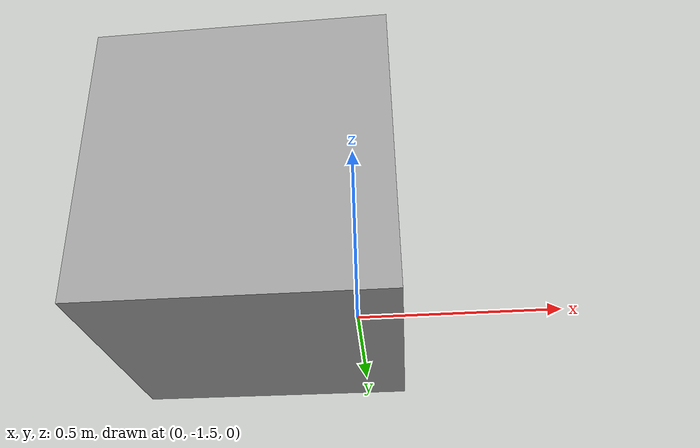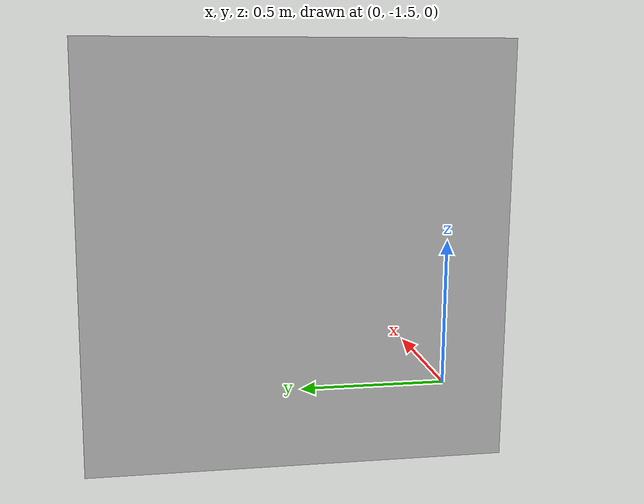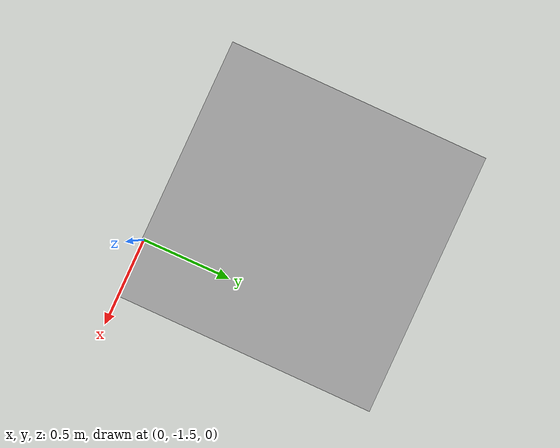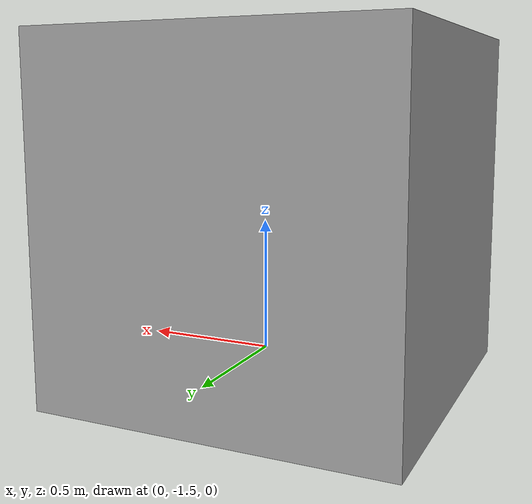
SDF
<?xml version='1.0'?>
<sdf version='1.6'>
  <model name='rolling_robot_model'>
    <link name='link_0'>
      <pose frame=''>-0.379486 -0.842679 0.643927 0 -0 0</pose>
      <inertial>
        <mass>10</mass>
        <inertia>
          <ixx>1.66667</ixx>
          <ixy>0</ixy>
          <ixz>0</ixz>
          <iyy>1.66667</iyy>
          <iyz>0</iyz>
          <izz>1.66667</izz>
        </inertia>
        <pose frame=''>0 0 0 0 -0 0</pose>
      </inertial>
      <self_collide>0</self_collide>
      <kinematic>0</kinematic>
      <visual name='visual'>
        <pose frame=''>0 0 0 0 -0 0</pose>
        <geometry>
          <box>
            <size>1 1 1</size>
          </box>
        </geometry>
        <material>
          <lighting>1</lighting>
          <script>
            <uri>file://media/materials/scripts/gazebo.material</uri>
            <name>Gazebo/Grey</name>
          </script>
          <ambient>0.3 0.3 0.3 1</ambient>
          <diffuse>0.7 0.7 0.7 1</diffuse>
          <specular>0.01 0.01 0.01 1</specular>
          <emissive>0 0 0 1</emissive>
          <shader type='vertex'>
            <normal_map>__default__</normal_map>
          </shader>
        </material>
        <cast_shadows>1</cast_shadows>
        <transparency>0</transparency>
      </visual>
      <collision name='collision'>
        <laser_retro>0</laser_retro>
        <max_contacts>10</max_contacts>
        <pose frame=''>0 0 0 0 -0 0</pose>
        <geometry>
          <box>
            <size>1 1 1</size>
          </box>
        </geometry>
        <surface>
          <friction>
            <ode>
              <mu>100</mu>
              <mu2>100</mu2>
              <fdir1>0 0 0</fdir1>
              <slip1>0</slip1>
              <slip2>0</slip2>
            </ode>
            <torsional>
              <coefficient>1</coefficient>
              <patch_radius>0</patch_radius>
              <surface_radius>0</surface_radius>
              <use_patch_radius>1</use_patch_radius>
              <ode>
                <slip>0</slip>
              </ode>
            </torsional>
          </friction>
          <bounce>
            <restitution_coefficient>0</restitution_coefficient>
            <threshold>1e+06</threshold>
          </bounce>
          <contact>
            <collide_without_contact>0</collide_without_contact>
            <collide_without_contact_bitmask>1</collide_without_contact_bitmask>
            <collide_bitmask>1</collide_bitmask>
            <ode>
              <soft_cfm>0</soft_cfm>
              <soft_erp>0.2</soft_erp>
              <kp>1e+13</kp>
              <kd>1</kd>
              <max_vel>0.01</max_vel>
              <min_depth>0</min_depth>
            </ode>
            <bullet>
              <split_impulse>1</split_impulse>
              <split_impulse_penetration_threshold>-0.01</split_impulse_penetration_threshold>
              <soft_cfm>0</soft_cfm>
              <soft_erp>0.2</soft_erp>
              <kp>1e+13</kp>
              <kd>1</kd>
            </bullet>
          </contact>
        </surface>
      </collision>
    </link>
    <link name='link_1'>
      <pose frame=''>-0.06482 -1.15732 0.356073 0 -0 0</pose>
      <inertial>
        <mass>1</mass>
        <inertia>
          <ixx>0.145833</ixx>
          <ixy>0</ixy>
          <ixz>0</ixz>
          <iyy>0.145833</iyy>
          <iyz>0</iyz>
          <izz>0.125</izz>
        </inertia>
        <pose frame=''>0 0 0 -0.785298 0 0.785298</pose>
      </inertial>
      <self_collide>0</self_collide>
      <kinematic>0</kinematic>
      <visual name='visual'>
        <pose frame=''>0 0 0 -0.785298 0 0.785298</pose>
        <geometry>
          <cylinder>
            <radius>0.05</radius>
            <length>0.5</length>
          </cylinder>
        </geometry>
        <material>
          <lighting>1</lighting>
          <script>
            <uri>file://media/materials/scripts/gazebo.material</uri>
            <name>Gazebo/Grey</name>
          </script>
          <ambient>0.3 0.3 0.3 1</ambient>
          <diffuse>0.7 0.7 0.7 1</diffuse>
          <specular>0.01 0.01 0.01 1</specular>
          <emissive>0 0 0 1</emissive>
          <shader type='vertex'>
            <normal_map>__default__</normal_map>
          </shader>
        </material>
        <cast_shadows>1</cast_shadows>
        <transparency>0</transparency>
      </visual>
      <collision name='collision'>
        <laser_retro>0</laser_retro>
        <max_contacts>10</max_contacts>
        <pose frame=''>0 0 0 -0.785298 0 0.785298</pose>
        <geometry>
          <cylinder>
            <radius>0.05</radius>
            <length>0.5</length>
          </cylinder>
        </geometry>
        <surface>
          <friction>
            <ode>
              <mu>10000</mu>
              <mu2>10000</mu2>
              <fdir1>0 0 0</fdir1>
              <slip1>0</slip1>
              <slip2>0</slip2>
            </ode>
            <torsional>
              <coefficient>1</coefficient>
              <patch_radius>0</patch_radius>
              <surface_radius>0</surface_radius>
              <use_patch_radius>1</use_patch_radius>
              <ode>
                <slip>0</slip>
              </ode>
            </torsional>
          </friction>
          <bounce>
            <restitution_coefficient>0</restitution_coefficient>
            <threshold>1e+06</threshold>
          </bounce>
          <contact>
            <collide_without_contact>0</collide_without_contact>
            <collide_without_contact_bitmask>1</collide_without_contact_bitmask>
            <collide_bitmask>1</collide_bitmask>
            <ode>
              <soft_cfm>0</soft_cfm>
              <soft_erp>0.2</soft_erp>
              <kp>1e+13</kp>
              <kd>1</kd>
              <max_vel>0.01</max_vel>
              <min_depth>0</min_depth>
            </ode>
            <bullet>
              <split_impulse>1</split_impulse>
              <split_impulse_penetration_threshold>-0.01</split_impulse_penetration_threshold>
              <soft_cfm>0</soft_cfm>
              <soft_erp>0.2</soft_erp>
              <kp>1e+13</kp>
              <kd>1</kd>
            </bullet>
          </contact>
        </surface>
      </collision>
    </link>
    <link name='link_1_clone'>
      <pose frame=''>-0.694129 -1.15735 0.356073 0 -0 -1.5708</pose>
      <inertial>
        <mass>1</mass>
        <inertia>
          <ixx>0.145833</ixx>
          <ixy>0</ixy>
          <ixz>0</ixz>
          <iyy>0.145833</iyy>
          <iyz>0</iyz>
          <izz>0.125</izz>
        </inertia>
        <pose frame=''>0 0 0 -0.785298 0 0.785298</pose>
      </inertial>
      <self_collide>0</self_collide>
      <kinematic>0</kinematic>
      <visual name='visual'>
        <pose frame=''>0 0 0 -0.785298 0 0.785298</pose>
        <geometry>
          <cylinder>
            <radius>0.05</radius>
            <length>0.5</length>
          </cylinder>
        </geometry>
        <material>
          <lighting>1</lighting>
          <script>
            <uri>file://media/materials/scripts/gazebo.material</uri>
            <name>Gazebo/Grey</name>
          </script>
          <ambient>0.3 0.3 0.3 1</ambient>
          <diffuse>0.7 0.7 0.7 1</diffuse>
          <specular>0.01 0.01 0.01 1</specular>
          <emissive>0 0 0 1</emissive>
          <shader type='vertex'>
            <normal_map>__default__</normal_map>
          </shader>
        </material>
        <cast_shadows>1</cast_shadows>
        <transparency>0</transparency>
      </visual>
      <collision name='collision'>
        <laser_retro>0</laser_retro>
        <max_contacts>10</max_contacts>
        <pose frame=''>0 0 0 -0.785298 0 0.785298</pose>
        <geometry>
          <cylinder>
            <radius>0.05</radius>
            <length>0.5</length>
          </cylinder>
        </geometry>
        <surface>
          <friction>
            <ode>
              <mu>1000</mu>
              <mu2>1000</mu2>
              <fdir1>0 0 0</fdir1>
              <slip1>0</slip1>
              <slip2>0</slip2>
            </ode>
            <torsional>
              <coefficient>1</coefficient>
              <patch_radius>0</patch_radius>
              <surface_radius>0</surface_radius>
              <use_patch_radius>1</use_patch_radius>
              <ode>
                <slip>0</slip>
              </ode>
            </torsional>
          </friction>
          <bounce>
            <restitution_coefficient>0</restitution_coefficient>
            <threshold>1e+06</threshold>
          </bounce>
          <contact>
            <collide_without_contact>0</collide_without_contact>
            <collide_without_contact_bitmask>1</collide_without_contact_bitmask>
            <collide_bitmask>1</collide_bitmask>
            <ode>
              <soft_cfm>0</soft_cfm>
              <soft_erp>0.2</soft_erp>
              <kp>1e+13</kp>
              <kd>1</kd>
              <max_vel>0.01</max_vel>
              <min_depth>0</min_depth>
            </ode>
            <bullet>
              <split_impulse>1</split_impulse>
              <split_impulse_penetration_threshold>-0.01</split_impulse_penetration_threshold>
              <soft_cfm>0</soft_cfm>
              <soft_erp>0.2</soft_erp>
              <kp>1e+13</kp>
              <kd>1</kd>
            </bullet>
          </contact>
        </surface>
      </collision>
    </link>
    <link name='link_1_clone_0'>
      <pose frame=''>-0.694153 -0.528026 0.356073 0 -0 3.14159</pose>
      <inertial>
        <mass>1</mass>
        <inertia>
          <ixx>0.145833</ixx>
          <ixy>0</ixy>
          <ixz>0</ixz>
          <iyy>0.145833</iyy>
          <iyz>0</iyz>
          <izz>0.125</izz>
        </inertia>
        <pose frame=''>0 0 0 -0.785298 0 0.785298</pose>
      </inertial>
      <self_collide>0</self_collide>
      <kinematic>0</kinematic>
      <visual name='visual'>
        <pose frame=''>0 0 0 -0.785298 0 0.785298</pose>
        <geometry>
          <cylinder>
            <radius>0.05</radius>
            <length>0.5</length>
          </cylinder>
        </geometry>
        <material>
          <lighting>1</lighting>
          <script>
            <uri>file://media/materials/scripts/gazebo.material</uri>
            <name>Gazebo/Grey</name>
          </script>
          <ambient>0.3 0.3 0.3 1</ambient>
          <diffuse>0.7 0.7 0.7 1</diffuse>
          <specular>0.01 0.01 0.01 1</specular>
          <emissive>0 0 0 1</emissive>
          <shader type='vertex'>
            <normal_map>__default__</normal_map>
          </shader>
        </material>
        <cast_shadows>1</cast_shadows>
        <transparency>0</transparency>
      </visual>
      <collision name='collision'>
        <laser_retro>0</laser_retro>
        <max_contacts>10</max_contacts>
        <pose frame=''>0 0 0 -0.785298 0 0.785298</pose>
        <geometry>
          <cylinder>
            <radius>0.05</radius>
            <length>0.5</length>
          </cylinder>
        </geometry>
        <surface>
          <friction>
            <ode>
              <mu>1</mu>
              <mu2>1</mu2>
              <fdir1>0 0 0</fdir1>
              <slip1>0</slip1>
              <slip2>0</slip2>
            </ode>
            <torsional>
              <coefficient>1</coefficient>
              <patch_radius>0</patch_radius>
              <surface_radius>0</surface_radius>
              <use_patch_radius>1</use_patch_radius>
              <ode>
                <slip>0</slip>
              </ode>
            </torsional>
          </friction>
          <bounce>
            <restitution_coefficient>0</restitution_coefficient>
            <threshold>1e+06</threshold>
          </bounce>
          <contact>
            <collide_without_contact>0</collide_without_contact>
            <collide_without_contact_bitmask>1</collide_without_contact_bitmask>
            <collide_bitmask>1</collide_bitmask>
            <ode>
              <soft_cfm>0</soft_cfm>
              <soft_erp>0.2</soft_erp>
              <kp>1e+13</kp>
              <kd>1</kd>
              <max_vel>0.01</max_vel>
              <min_depth>0</min_depth>
            </ode>
            <bullet>
              <split_impulse>1</split_impulse>
              <split_impulse_penetration_threshold>-0.01</split_impulse_penetration_threshold>
              <soft_cfm>0</soft_cfm>
              <soft_erp>0.2</soft_erp>
              <kp>1e+13</kp>
              <kd>1</kd>
            </bullet>
          </contact>
        </surface>
      </collision>
    </link>
    <link name='link_1_clone_0_clone'>
      <pose frame=''>-0.06482 -1.15733 0.931781 0 -0 0</pose>
      <inertial>
        <mass>1</mass>
        <inertia>
          <ixx>0.145833</ixx>
          <ixy>0</ixy>
          <ixz>0</ixz>
          <iyy>0.145833</iyy>
          <iyz>0</iyz>
          <izz>0.125</izz>
        </inertia>
        <pose frame=''>0 0 0 0 -0 0</pose>
      </inertial>
      <self_collide>0</self_collide>
      <kinematic>0</kinematic>
      <visual name='visual'>
        <pose frame=''>0 0 0 0.785298 -0 0.785298</pose>
        <geometry>
          <cylinder>
            <radius>0.05</radius>
            <length>0.5</length>
          </cylinder>
        </geometry>
        <material>
          <lighting>1</lighting>
          <script>
            <uri>file://media/materials/scripts/gazebo.material</uri>
            <name>Gazebo/Grey</name>
          </script>
          <ambient>0.3 0.3 0.3 1</ambient>
          <diffuse>0.7 0.7 0.7 1</diffuse>
          <specular>0.01 0.01 0.01 1</specular>
          <emissive>0 0 0 1</emissive>
          <shader type='vertex'>
            <normal_map>__default__</normal_map>
          </shader>
        </material>
        <cast_shadows>1</cast_shadows>
        <transparency>0</transparency>
      </visual>
      <collision name='collision'>
        <laser_retro>0</laser_retro>
        <max_contacts>10</max_contacts>
        <pose frame=''>0 0 0 0.785298 -0 0.785298</pose>
        <geometry>
          <cylinder>
            <radius>0.05</radius>
            <length>0.5</length>
          </cylinder>
        </geometry>
        <surface>
          <friction>
            <ode>
              <mu>1</mu>
              <mu2>1</mu2>
              <fdir1>0 0 0</fdir1>
              <slip1>0</slip1>
              <slip2>0</slip2>
            </ode>
            <torsional>
              <coefficient>1</coefficient>
              <patch_radius>0</patch_radius>
              <surface_radius>0</surface_radius>
              <use_patch_radius>1</use_patch_radius>
              <ode>
                <slip>0</slip>
              </ode>
            </torsional>
          </friction>
          <bounce>
            <restitution_coefficient>0</restitution_coefficient>
            <threshold>1e+06</threshold>
          </bounce>
          <contact>
            <collide_without_contact>0</collide_without_contact>
            <collide_without_contact_bitmask>1</collide_without_contact_bitmask>
            <collide_bitmask>1</collide_bitmask>
            <ode>
              <soft_cfm>0</soft_cfm>
              <soft_erp>0.2</soft_erp>
              <kp>1e+13</kp>
              <kd>1</kd>
              <max_vel>0.01</max_vel>
              <min_depth>0</min_depth>
            </ode>
            <bullet>
              <split_impulse>1</split_impulse>
              <split_impulse_penetration_threshold>-0.01</split_impulse_penetration_threshold>
              <soft_cfm>0</soft_cfm>
              <soft_erp>0.2</soft_erp>
              <kp>1e+13</kp>
              <kd>1</kd>
            </bullet>
          </contact>
        </surface>
      </collision>
    </link>
    <link name='link_1_clone_0_clone_clone'>
      <pose frame=''>-0.064832 -0.528014 0.931781 0 -0 1.5708</pose>
      <inertial>
        <mass>1</mass>
        <inertia>
          <ixx>0.145833</ixx>
          <ixy>0</ixy>
          <ixz>0</ixz>
          <iyy>0.145833</iyy>
          <iyz>0</iyz>
          <izz>0.125</izz>
        </inertia>
        <pose frame=''>0 0 0 0 -0 0</pose>
      </inertial>
      <self_collide>0</self_collide>
      <kinematic>0</kinematic>
      <visual name='visual'>
        <pose frame=''>0 0 0 0.785298 -0 0.785298</pose>
        <geometry>
          <cylinder>
            <radius>0.05</radius>
            <length>0.5</length>
          </cylinder>
        </geometry>
        <material>
          <lighting>1</lighting>
          <script>
            <uri>file://media/materials/scripts/gazebo.material</uri>
            <name>Gazebo/Grey</name>
          </script>
          <ambient>0.3 0.3 0.3 1</ambient>
          <diffuse>0.7 0.7 0.7 1</diffuse>
          <specular>0.01 0.01 0.01 1</specular>
          <emissive>0 0 0 1</emissive>
          <shader type='vertex'>
            <normal_map>__default__</normal_map>
          </shader>
        </material>
        <cast_shadows>1</cast_shadows>
        <transparency>0</transparency>
      </visual>
      <collision name='collision'>
        <laser_retro>0</laser_retro>
        <max_contacts>10</max_contacts>
        <pose frame=''>0 0 0 0.785298 -0 0.785298</pose>
        <geometry>
          <cylinder>
            <radius>0.05</radius>
            <length>0.5</length>
          </cylinder>
        </geometry>
        <surface>
          <friction>
            <ode>
              <mu>1</mu>
              <mu2>1</mu2>
              <fdir1>0 0 0</fdir1>
              <slip1>0</slip1>
              <slip2>0</slip2>
            </ode>
            <torsional>
              <coefficient>1</coefficient>
              <patch_radius>0</patch_radius>
              <surface_radius>0</surface_radius>
              <use_patch_radius>1</use_patch_radius>
              <ode>
                <slip>0</slip>
              </ode>
            </torsional>
          </friction>
          <bounce>
            <restitution_coefficient>0</restitution_coefficient>
            <threshold>1e+06</threshold>
          </bounce>
          <contact>
            <collide_without_contact>0</collide_without_contact>
            <collide_without_contact_bitmask>1</collide_without_contact_bitmask>
            <collide_bitmask>1</collide_bitmask>
            <ode>
              <soft_cfm>0</soft_cfm>
              <soft_erp>0.2</soft_erp>
              <kp>1e+13</kp>
              <kd>1</kd>
              <max_vel>0.01</max_vel>
              <min_depth>0</min_depth>
            </ode>
            <bullet>
              <split_impulse>1</split_impulse>
              <split_impulse_penetration_threshold>-0.01</split_impulse_penetration_threshold>
              <soft_cfm>0</soft_cfm>
              <soft_erp>0.2</soft_erp>
              <kp>1e+13</kp>
              <kd>1</kd>
            </bullet>
          </contact>
        </surface>
      </collision>
    </link>
    <link name='link_1_clone_0_clone_clone_0'>
      <pose frame=''>-0.694142 -1.15735 0.931781 0 -0 -1.5708</pose>
      <inertial>
        <mass>1</mass>
        <inertia>
          <ixx>0.145833</ixx>
          <ixy>0</ixy>
          <ixz>0</ixz>
          <iyy>0.145833</iyy>
          <iyz>0</iyz>
          <izz>0.125</izz>
        </inertia>
        <pose frame=''>0 0 0 0 -0 0</pose>
      </inertial>
      <self_collide>0</self_collide>
      <kinematic>0</kinematic>
      <visual name='visual'>
        <pose frame=''>0 0 0 0.785298 -0 0.785298</pose>
        <geometry>
          <cylinder>
            <radius>0.05</radius>
            <length>0.5</length>
          </cylinder>
        </geometry>
        <material>
          <lighting>1</lighting>
          <script>
            <uri>file://media/materials/scripts/gazebo.material</uri>
            <name>Gazebo/Grey</name>
          </script>
          <ambient>0.3 0.3 0.3 1</ambient>
          <diffuse>0.7 0.7 0.7 1</diffuse>
          <specular>0.01 0.01 0.01 1</specular>
          <emissive>0 0 0 1</emissive>
          <shader type='vertex'>
            <normal_map>__default__</normal_map>
          </shader>
        </material>
        <cast_shadows>1</cast_shadows>
        <transparency>0</transparency>
      </visual>
      <collision name='collision'>
        <laser_retro>0</laser_retro>
        <max_contacts>10</max_contacts>
        <pose frame=''>0 0 0 0.785298 -0 0.785298</pose>
        <geometry>
          <cylinder>
            <radius>0.05</radius>
            <length>0.5</length>
          </cylinder>
        </geometry>
        <surface>
          <friction>
            <ode>
              <mu>1</mu>
              <mu2>1</mu2>
              <fdir1>0 0 0</fdir1>
              <slip1>0</slip1>
              <slip2>0</slip2>
            </ode>
            <torsional>
              <coefficient>1</coefficient>
              <patch_radius>0</patch_radius>
              <surface_radius>0</surface_radius>
              <use_patch_radius>1</use_patch_radius>
              <ode>
                <slip>0</slip>
              </ode>
            </torsional>
          </friction>
          <bounce>
            <restitution_coefficient>0</restitution_coefficient>
            <threshold>1e+06</threshold>
          </bounce>
          <contact>
            <collide_without_contact>0</collide_without_contact>
            <collide_without_contact_bitmask>1</collide_without_contact_bitmask>
            <collide_bitmask>1</collide_bitmask>
            <ode>
              <soft_cfm>0</soft_cfm>
              <soft_erp>0.2</soft_erp>
              <kp>1e+13</kp>
              <kd>1</kd>
              <max_vel>0.01</max_vel>
              <min_depth>0</min_depth>
            </ode>
            <bullet>
              <split_impulse>1</split_impulse>
              <split_impulse_penetration_threshold>-0.01</split_impulse_penetration_threshold>
              <soft_cfm>0</soft_cfm>
              <soft_erp>0.2</soft_erp>
              <kp>1e+13</kp>
              <kd>1</kd>
            </bullet>
          </contact>
        </surface>
      </collision>
    </link>
    <link name='link_1_clone_0_clone_clone_1'>
      <pose frame=''>-0.694153 -0.528023 0.931781 0 -0 3.14159</pose>
      <inertial>
        <mass>1</mass>
        <inertia>
          <ixx>0.145833</ixx>
          <ixy>0</ixy>
          <ixz>0</ixz>
          <iyy>0.145833</iyy>
          <iyz>0</iyz>
          <izz>0.125</izz>
        </inertia>
        <pose frame=''>0 0 0 0 -0 0</pose>
      </inertial>
      <self_collide>0</self_collide>
      <kinematic>0</kinematic>
      <visual name='visual'>
        <pose frame=''>0 0 0 0.785298 -0 0.785298</pose>
        <geometry>
          <cylinder>
            <radius>0.05</radius>
            <length>0.5</length>
          </cylinder>
        </geometry>
        <material>
          <lighting>1</lighting>
          <script>
            <uri>file://media/materials/scripts/gazebo.material</uri>
            <name>Gazebo/Grey</name>
          </script>
          <ambient>0.3 0.3 0.3 1</ambient>
          <diffuse>0.7 0.7 0.7 1</diffuse>
          <specular>0.01 0.01 0.01 1</specular>
          <emissive>0 0 0 1</emissive>
          <shader type='vertex'>
            <normal_map>__default__</normal_map>
          </shader>
        </material>
        <cast_shadows>1</cast_shadows>
        <transparency>0</transparency>
      </visual>
      <collision name='collision'>
        <laser_retro>0</laser_retro>
        <max_contacts>10</max_contacts>
        <pose frame=''>0 0 0 0.785298 -0 0.785298</pose>
        <geometry>
          <cylinder>
            <radius>0.05</radius>
            <length>0.5</length>
          </cylinder>
        </geometry>
        <surface>
          <friction>
            <ode>
              <mu>1</mu>
              <mu2>1</mu2>
              <fdir1>0 0 0</fdir1>
              <slip1>0</slip1>
              <slip2>0</slip2>
            </ode>
            <torsional>
              <coefficient>1</coefficient>
              <patch_radius>0</patch_radius>
              <surface_radius>0</surface_radius>
              <use_patch_radius>1</use_patch_radius>
              <ode>
                <slip>0</slip>
              </ode>
            </torsional>
          </friction>
          <bounce>
            <restitution_coefficient>0</restitution_coefficient>
            <threshold>1e+06</threshold>
          </bounce>
          <contact>
            <collide_without_contact>0</collide_without_contact>
            <collide_without_contact_bitmask>1</collide_without_contact_bitmask>
            <collide_bitmask>1</collide_bitmask>
            <ode>
              <soft_cfm>0</soft_cfm>
              <soft_erp>0.2</soft_erp>
              <kp>1e+13</kp>
              <kd>1</kd>
              <max_vel>0.01</max_vel>
              <min_depth>0</min_depth>
            </ode>
            <bullet>
              <split_impulse>1</split_impulse>
              <split_impulse_penetration_threshold>-0.01</split_impulse_penetration_threshold>
              <soft_cfm>0</soft_cfm>
              <soft_erp>0.2</soft_erp>
              <kp>1e+13</kp>
              <kd>1</kd>
            </bullet>
          </contact>
        </surface>
      </collision>
    </link>
    <link name='link_1_clone_1'>
      <pose frame=''>-0.064831 -0.528013 0.356073 0 -0 1.5708</pose>
      <inertial>
        <mass>1</mass>
        <inertia>
          <ixx>0.145833</ixx>
          <ixy>0</ixy>
          <ixz>0</ixz>
          <iyy>0.145833</iyy>
          <iyz>0</iyz>
          <izz>0.125</izz>
        </inertia>
        <pose frame=''>0 0 0 -0.785298 0 0.785298</pose>
      </inertial>
      <self_collide>0</self_collide>
      <kinematic>0</kinematic>
      <visual name='visual'>
        <pose frame=''>0 0 0 -0.785298 0 0.785298</pose>
        <geometry>
          <cylinder>
            <radius>0.05</radius>
            <length>0.5</length>
          </cylinder>
        </geometry>
        <material>
          <lighting>1</lighting>
          <script>
            <uri>file://media/materials/scripts/gazebo.material</uri>
            <name>Gazebo/Grey</name>
          </script>
          <ambient>0.3 0.3 0.3 1</ambient>
          <diffuse>0.7 0.7 0.7 1</diffuse>
          <specular>0.01 0.01 0.01 1</specular>
          <emissive>0 0 0 1</emissive>
          <shader type='vertex'>
            <normal_map>__default__</normal_map>
          </shader>
        </material>
        <cast_shadows>1</cast_shadows>
        <transparency>0</transparency>
      </visual>
      <collision name='collision'>
        <laser_retro>0</laser_retro>
        <max_contacts>10</max_contacts>
        <pose frame=''>0 0 0 -0.785298 0 0.785298</pose>
        <geometry>
          <cylinder>
            <radius>0.05</radius>
            <length>0.5</length>
          </cylinder>
        </geometry>
        <surface>
          <friction>
            <ode>
              <mu>1</mu>
              <mu2>1</mu2>
              <fdir1>0 0 0</fdir1>
              <slip1>0</slip1>
              <slip2>0</slip2>
            </ode>
            <torsional>
              <coefficient>1</coefficient>
              <patch_radius>0</patch_radius>
              <surface_radius>0</surface_radius>
              <use_patch_radius>1</use_patch_radius>
              <ode>
                <slip>0</slip>
              </ode>
            </torsional>
          </friction>
          <bounce>
            <restitution_coefficient>0</restitution_coefficient>
            <threshold>1e+06</threshold>
          </bounce>
          <contact>
            <collide_without_contact>0</collide_without_contact>
            <collide_without_contact_bitmask>1</collide_without_contact_bitmask>
            <collide_bitmask>1</collide_bitmask>
            <ode>
              <soft_cfm>0</soft_cfm>
              <soft_erp>0.2</soft_erp>
              <kp>1e+13</kp>
              <kd>1</kd>
              <max_vel>0.01</max_vel>
              <min_depth>0</min_depth>
            </ode>
            <bullet>
              <split_impulse>1</split_impulse>
              <split_impulse_penetration_threshold>-0.01</split_impulse_penetration_threshold>
              <soft_cfm>0</soft_cfm>
              <soft_erp>0.2</soft_erp>
              <kp>1e+13</kp>
              <kd>1</kd>
            </bullet>
          </contact>
        </surface>
      </collision>
    </link>
    <joint name='link_0_JOINT_0_0' type='prismatic'>
      <parent>link_0</parent>
      <child>link_1_clone</child>
      <pose frame=''>0 0 0 2.35619 -0 0.785398</pose>
      <axis>
        <xyz>0 0 1</xyz>
        <use_parent_model_frame>0</use_parent_model_frame>
        <limit>
          <lower>-1</lower>
          <upper>1.5</upper>
          <effort>-1000</effort>
          <velocity>-1</velocity>
        </limit>
        <dynamics>
          <spring_reference>0</spring_reference>
          <spring_stiffness>0</spring_stiffness>
          <damping>0</damping>
          <friction>0</friction>
        </dynamics>
      </axis>
      <physics>
        <ode>
          <limit>
            <cfm>0</cfm>
            <erp>0.2</erp>
          </limit>
          <suspension>
            <cfm>0</cfm>
            <erp>0.2</erp>
          </suspension>
        </ode>
      </physics>
    </joint>
    <joint name='link_0_JOINT_0_1' type='prismatic'>
      <parent>link_0</parent>
      <child>link_1_clone_0</child>
      <pose frame=''>0 0 0 2.35619 -0 0.785398</pose>
      <axis>
        <xyz>0 0 1</xyz>
        <use_parent_model_frame>0</use_parent_model_frame>
        <limit>
          <lower>-1.5</lower>
          <upper>1.5</upper>
          <effort>-1000</effort>
          <velocity>-1</velocity>
        </limit>
        <dynamics>
          <spring_reference>0</spring_reference>
          <spring_stiffness>0</spring_stiffness>
          <damping>0</damping>
          <friction>0</friction>
        </dynamics>
      </axis>
      <physics>
        <ode>
          <limit>
            <cfm>0</cfm>
            <erp>0.2</erp>
          </limit>
          <suspension>
            <cfm>0</cfm>
            <erp>0.2</erp>
          </suspension>
        </ode>
      </physics>
    </joint>
    <joint name='link_0_JOINT_0_2' type='prismatic'>
      <parent>link_0</parent>
      <child>link_1_clone_1</child>
      <pose frame=''>0 0 0 2.35619 -0 0.785398</pose>
      <axis>
        <xyz>0 0 1</xyz>
        <use_parent_model_frame>0</use_parent_model_frame>
        <limit>
          <lower>-1.5</lower>
          <upper>1.5</upper>
          <effort>-1000</effort>
          <velocity>-1</velocity>
        </limit>
        <dynamics>
          <spring_reference>0</spring_reference>
          <spring_stiffness>0</spring_stiffness>
          <damping>0</damping>
          <friction>0</friction>
        </dynamics>
      </axis>
      <physics>
        <ode>
          <limit>
            <cfm>0</cfm>
            <erp>0.2</erp>
          </limit>
          <suspension>
            <cfm>0</cfm>
            <erp>0.2</erp>
          </suspension>
        </ode>
      </physics>
    </joint>
    <joint name='link_0_JOINT_0' type='prismatic'>
      <parent>link_0</parent>
      <child>link_1</child>
      <pose frame=''>0 0 0 2.35619 -0 0.785398</pose>
      <axis>
        <xyz>0 0 1</xyz>
        <use_parent_model_frame>0</use_parent_model_frame>
        <limit>
          <lower>-1.5</lower>
          <upper>1.5</upper>
          <effort>-1000</effort>
          <velocity>-1</velocity>
        </limit>
        <dynamics>
          <spring_reference>0</spring_reference>
          <spring_stiffness>0</spring_stiffness>
          <damping>0</damping>
          <friction>0</friction>
        </dynamics>
      </axis>
      <physics>
        <ode>
          <limit>
            <cfm>0</cfm>
            <erp>0.2</erp>
          </limit>
          <suspension>
            <cfm>0</cfm>
            <erp>0.2</erp>
          </suspension>
        </ode>
      </physics>
    </joint>
    <joint name='link_0_JOINT_1' type='prismatic'>
      <parent>link_0</parent>
      <child>link_1_clone_0_clone</child>
      <pose frame=''>0 0 0 0.785398 0 0.785398</pose>
      <axis>
        <xyz>0 0 1</xyz>
        <use_parent_model_frame>0</use_parent_model_frame>
        <limit>
          <lower>-1.5</lower>
          <upper>1.5</upper>
          <effort>-1000</effort>
          <velocity>-1</velocity>
        </limit>
        <dynamics>
          <spring_reference>0</spring_reference>
          <spring_stiffness>0</spring_stiffness>
          <damping>0</damping>
          <friction>0</friction>
        </dynamics>
      </axis>
      <physics>
        <ode>
          <limit>
            <cfm>0</cfm>
            <erp>0.2</erp>
          </limit>
          <suspension>
            <cfm>0</cfm>
            <erp>0.2</erp>
          </suspension>
        </ode>
      </physics>
    </joint>
    <joint name='link_0_JOINT_2' type='prismatic'>
      <parent>link_0</parent>
      <child>link_1_clone_0_clone_clone</child>
      <pose frame=''>0 0 0 0.785398 0 0.785398</pose>
      <axis>
        <xyz>0 0 1</xyz>
        <use_parent_model_frame>0</use_parent_model_frame>
        <limit>
          <lower>-1.5</lower>
          <upper>1.5</upper>
          <effort>-1000</effort>
          <velocity>-1</velocity>
        </limit>
        <dynamics>
          <spring_reference>0</spring_reference>
          <spring_stiffness>0</spring_stiffness>
          <damping>0</damping>
          <friction>0</friction>
        </dynamics>
      </axis>
      <physics>
        <ode>
          <limit>
            <cfm>0</cfm>
            <erp>0.2</erp>
          </limit>
          <suspension>
            <cfm>0</cfm>
            <erp>0.2</erp>
          </suspension>
        </ode>
      </physics>
    </joint>
    <joint name='link_0_JOINT_3' type='prismatic'>
      <parent>link_0</parent>
      <child>link_1_clone_0_clone_clone_0</child>
      <pose frame=''>0 0 0 0.785398 0 0.785398</pose>
      <axis>
        <xyz>0 0 1</xyz>
        <use_parent_model_frame>0</use_parent_model_frame>
        <limit>
          <lower>-1.5</lower>
          <upper>1.5</upper>
          <effort>-1000</effort>
          <velocity>-1</velocity>
        </limit>
        <dynamics>
          <spring_reference>0</spring_reference>
          <spring_stiffness>0</spring_stiffness>
          <damping>0</damping>
          <friction>0</friction>
        </dynamics>
      </axis>
      <physics>
        <ode>
          <limit>
            <cfm>0</cfm>
            <erp>0.2</erp>
          </limit>
          <suspension>
            <cfm>0</cfm>
            <erp>0.2</erp>
          </suspension>
        </ode>
      </physics>
    </joint>
    <joint name='link_0_JOINT_4' type='prismatic'>
      <parent>link_0</parent>
      <child>link_1_clone_0_clone_clone_1</child>
      <pose frame=''>0 0 0 0.785398 0 0.785398</pose>
      <axis>
        <xyz>0 0 1</xyz>
        <use_parent_model_frame>0</use_parent_model_frame>
        <limit>
          <lower>-1.5</lower>
          <upper>1.5</upper>
          <effort>-1000</effort>
          <velocity>-1</velocity>
        </limit>
        <dynamics>
          <spring_reference>0</spring_reference>
          <spring_stiffness>0</spring_stiffness>
          <damping>0</damping>
          <friction>0</friction>
        </dynamics>
      </axis>
      <physics>
        <ode>
          <limit>
            <cfm>0</cfm>
            <erp>0.2</erp>
          </limit>
          <suspension>
            <cfm>0</cfm>
            <erp>0.2</erp>
          </suspension>
        </ode>
      </physics>
    </joint>
    <static>0</static>
    <allow_auto_disable>1</allow_auto_disable>
  </model>
</sdf>
